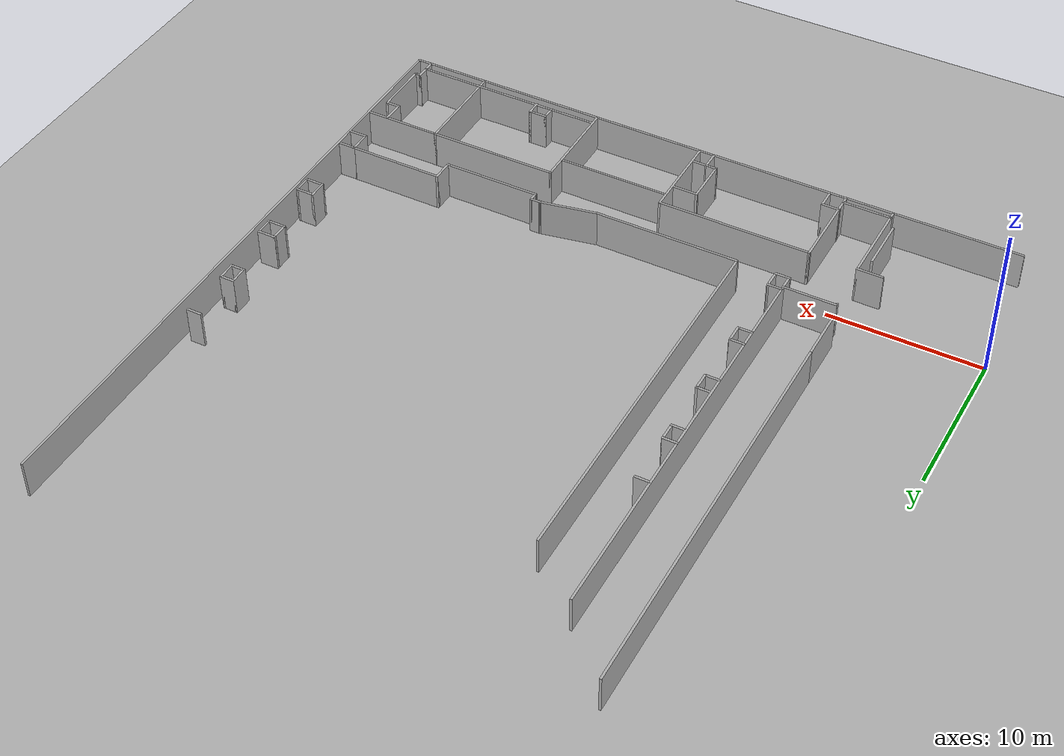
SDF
<sdf version="1.9">
 <world name="tsudanuma2-3">
  <model name="ground_plane">
   <static>true</static>
   <link name="link">
    <collision name="collision">
     <geometry><plane><normal>0 0 1</normal><size>100 100</size></plane></geometry>
     <surface>
      <contact><collide_bitmask>65535</collide_bitmask></contact>
      <friction><ode><mu>100</mu><mu2>50</mu2></ode></friction>
     </surface>
    </collision>
    <visual name="visual">
     <cast_shadows>false</cast_shadows>
     <geometry><plane><normal>0 0 1</normal><size>100 100</size></plane></geometry>
     <material>
      <ambient>0.5 0.5 0.5 1</ambient>
      <diffuse>0.7 0.7 0.7 1</diffuse>
      <specular>0.1 0.1 0.1 1</specular>
     </material>
    </visual>
   </link>
  </model>
  <model name="Tsudanuma_2-3-without_door">
   <pose>11.859500000000001 12.3796 0 0 0 0</pose>
   <link name="Wall_10">
    <collision name="Wall_10_Collision">
     <geometry><box><size>42.159100000000002 0.14999999999999999 2.5</size></box></geometry>
     <pose>0 0 1.25 0 0 0</pose>
    </collision>
    <visual name="Wall_10_Visual">
     <pose>0 0 1.25 0 0 0</pose>
     <geometry><box><size>42.159100000000002 0.14999999999999999 2.5</size></box></geometry>
     <material>
      <ambient>0.5 0.5 0.5 1</ambient>
      <diffuse>0.7 0.7 0.7 1</diffuse>
      <specular>0.1 0.1 0.1 1</specular>
     </material>
     <meta><layer>0</layer></meta>
    </visual>
    <pose>9.8734099999999998 -20.1767 0 0 0 -0.00063100000000000016</pose>
   </link>
   <link name="Wall_11">
    <collision name="Wall_11_Collision">
     <geometry><box><size>42 0.14999999999999999 2.5</size></box></geometry>
     <pose>0 0 1.25 0 0 0</pose>
    </collision>
    <visual name="Wall_11_Visual">
     <pose>0 0 1.25 0 0 0</pose>
     <geometry><box><size>42 0.14999999999999999 2.5</size></box></geometry>
     <material>
      <ambient>0.5 0.5 0.5 1</ambient>
      <diffuse>0.7 0.7 0.7 1</diffuse>
      <specular>0.1 0.1 0.1 1</specular>
     </material>
     <meta><layer>0</layer></meta>
    </visual>
    <pose>30.8779 0.73503799999999997 0 0 0 1.5708</pose>
   </link>
   <link name="Wall_200">
    <collision name="Wall_200_Collision">
     <geometry><box><size>3.5 0.14999999999999999 2.5</size></box></geometry>
     <pose>0 0 1.25 0 0 0</pose>
    </collision>
    <visual name="Wall_200_Visual">
     <pose>0 0 1.25 0 0 0</pose>
     <geometry><box><size>3.5 0.14999999999999999 2.5</size></box></geometry>
     <material>
      <ambient>0.5 0.5 0.5 1</ambient>
      <diffuse>0.7 0.7 0.7 1</diffuse>
      <specular>0.1 0.1 0.1 1</specular>
     </material>
     <meta><layer>0</layer></meta>
    </visual>
    <pose>-3.3311199999999999 -17.138500000000001 0 0 0 1.5708</pose>
   </link>
   <link name="Wall_203">
    <collision name="Wall_203_Collision">
     <geometry><box><size>1.75 0.14999999999999999 2.5</size></box></geometry>
     <pose>0 0 1.25 0 0 0</pose>
    </collision>
    <visual name="Wall_203_Visual">
     <pose>0 0 1.25 0 0 0</pose>
     <geometry><box><size>1.75 0.14999999999999999 2.5</size></box></geometry>
     <material>
      <ambient>0.5 0.5 0.5 1</ambient>
      <diffuse>0.7 0.7 0.7 1</diffuse>
      <specular>0.1 0.1 0.1 1</specular>
     </material>
     <meta><layer>0</layer></meta>
    </visual>
    <pose>-3.6311200000000001 -14.3635 0 0 0 0</pose>
   </link>
   <link name="Wall_204">
    <collision name="Wall_204_Collision">
     <geometry><box><size>5.5 0.14999999999999999 2.5</size></box></geometry>
     <pose>0 0 1.25 0 0 0</pose>
    </collision>
    <visual name="Wall_204_Visual">
     <pose>0 0 1.25 0 0 0</pose>
     <geometry><box><size>5.5 0.14999999999999999 2.5</size></box></geometry>
     <material>
      <ambient>0.5 0.5 0.5 1</ambient>
      <diffuse>0.7 0.7 0.7 1</diffuse>
      <specular>0.1 0.1 0.1 1</specular>
     </material>
     <meta><layer>0</layer></meta>
    </visual>
    <pose>-2.8311199999999999 -17.038499999999999 0 0 0 -1.5708</pose>
   </link>
   <link name="Wall_205">
    <collision name="Wall_205_Collision">
     <geometry><box><size>3.25 0.14999999999999999 2.5</size></box></geometry>
     <pose>0 0 1.25 0 0 0</pose>
    </collision>
    <visual name="Wall_205_Visual">
     <pose>0 0 1.25 0 0 0</pose>
     <geometry><box><size>3.25 0.14999999999999999 2.5</size></box></geometry>
     <material>
      <ambient>0.5 0.5 0.5 1</ambient>
      <diffuse>0.7 0.7 0.7 1</diffuse>
      <specular>0.1 0.1 0.1 1</specular>
     </material>
     <meta><layer>0</layer></meta>
    </visual>
    <pose>-1.28112 -19.7135 0 0 0 0</pose>
   </link>
   <link name="Wall_206">
    <collision name="Wall_206_Collision">
     <geometry><box><size>5.5 0.14999999999999999 2.5</size></box></geometry>
     <pose>0 0 1.25 0 0 0</pose>
    </collision>
    <visual name="Wall_206_Visual">
     <pose>0 0 1.25 0 0 0</pose>
     <geometry><box><size>5.5 0.14999999999999999 2.5</size></box></geometry>
     <material>
      <ambient>0.5 0.5 0.5 1</ambient>
      <diffuse>0.7 0.7 0.7 1</diffuse>
      <specular>0.1 0.1 0.1 1</specular>
     </material>
     <meta><layer>0</layer></meta>
    </visual>
    <pose>0.26887899999999998 -17.038499999999999 0 0 0 1.5708</pose>
   </link>
   <link name="Wall_207">
    <collision name="Wall_207_Collision">
     <geometry><box><size>10.113300000000001 0.14999999999999999 2.5</size></box></geometry>
     <pose>0 0 1.25 0 0 0</pose>
    </collision>
    <visual name="Wall_207_Visual">
     <pose>0 0 1.25 0 0 0</pose>
     <geometry><box><size>10.113300000000001 0.14999999999999999 2.5</size></box></geometry>
     <material>
      <ambient>0.5 0.5 0.5 1</ambient>
      <diffuse>0.7 0.7 0.7 1</diffuse>
      <specular>0.1 0.1 0.1 1</specular>
     </material>
     <meta><layer>0</layer></meta>
    </visual>
    <pose>5.2505100000000002 -14.3635 0 0 0 0</pose>
   </link>
   <link name="Wall_209">
    <collision name="Wall_209_Collision">
     <geometry><box><size>5.9000000000000004 0.14999999999999999 2.5</size></box></geometry>
     <pose>0 0 1.25 0 0 0</pose>
    </collision>
    <visual name="Wall_209_Visual">
     <pose>0 0 1.25 0 0 0</pose>
     <geometry><box><size>5.9000000000000004 0.14999999999999999 2.5</size></box></geometry>
     <material>
      <ambient>0.5 0.5 0.5 1</ambient>
      <diffuse>0.7 0.7 0.7 1</diffuse>
      <specular>0.1 0.1 0.1 1</specular>
     </material>
     <meta><layer>0</layer></meta>
    </visual>
    <pose>10.232100000000001 -17.238499999999998 0 0 0 -1.5708</pose>
   </link>
   <link name="Wall_211">
    <collision name="Wall_211_Collision">
     <geometry><box><size>7.25 0.14999999999999999 2.5</size></box></geometry>
     <pose>0 0 1.25 0 0 0</pose>
    </collision>
    <visual name="Wall_211_Visual">
     <pose>0 0 1.25 0 0 0</pose>
     <geometry><box><size>7.25 0.14999999999999999 2.5</size></box></geometry>
     <material>
      <ambient>0.5 0.5 0.5 1</ambient>
      <diffuse>0.7 0.7 0.7 1</diffuse>
      <specular>0.1 0.1 0.1 1</specular>
     </material>
     <meta><layer>0</layer></meta>
    </visual>
    <pose>13.852 -15.243499999999999 0 0 0 0</pose>
   </link>
   <link name="Wall_213">
    <collision name="Wall_213_Collision">
     <geometry><box><size>6.5 0.14999999999999999 2.5</size></box></geometry>
     <pose>0 0 1.25 0 0 0</pose>
    </collision>
    <visual name="Wall_213_Visual">
     <pose>0 0 1.25 0 0 0</pose>
     <geometry><box><size>6.5 0.14999999999999999 2.5</size></box></geometry>
     <material>
      <ambient>0.5 0.5 0.5 1</ambient>
      <diffuse>0.7 0.7 0.7 1</diffuse>
      <specular>0.1 0.1 0.1 1</specular>
     </material>
     <meta><layer>0</layer></meta>
    </visual>
    <pose>17.539300000000001 -16.946400000000001 0 0 0 1.5708</pose>
   </link>
   <link name="Wall_215">
    <collision name="Wall_215_Collision">
     <geometry><box><size>8.5 0.14999999999999999 2.5</size></box></geometry>
     <pose>0 0 1.25 0 0 0</pose>
    </collision>
    <visual name="Wall_215_Visual">
     <pose>0 0 1.25 0 0 0</pose>
     <geometry><box><size>8.5 0.14999999999999999 2.5</size></box></geometry>
     <material>
      <ambient>0.5 0.5 0.5 1</ambient>
      <diffuse>0.7 0.7 0.7 1</diffuse>
      <specular>0.1 0.1 0.1 1</specular>
     </material>
     <meta><layer>0</layer></meta>
    </visual>
    <pose>21.714300000000001 -13.7714 0 0 0 0</pose>
   </link>
   <link name="Wall_216">
    <collision name="Wall_216_Collision">
     <geometry><box><size>6.5 0.14999999999999999 2.5</size></box></geometry>
     <pose>0 0 1.25 0 0 0</pose>
    </collision>
    <visual name="Wall_216_Visual">
     <pose>0 0 1.25 0 0 0</pose>
     <geometry><box><size>6.5 0.14999999999999999 2.5</size></box></geometry>
     <material>
      <ambient>0.5 0.5 0.5 1</ambient>
      <diffuse>0.7 0.7 0.7 1</diffuse>
      <specular>0.1 0.1 0.1 1</specular>
     </material>
     <meta><layer>0</layer></meta>
    </visual>
    <pose>25.889299999999999 -16.946400000000001 0 0 0 -1.5708</pose>
   </link>
   <link name="Wall_218">
    <collision name="Wall_218_Collision">
     <geometry><box><size>5 0.14999999999999999 2.5</size></box></geometry>
     <pose>0 0 1.25 0 0 0</pose>
    </collision>
    <visual name="Wall_218_Visual">
     <pose>0 0 1.25 0 0 0</pose>
     <geometry><box><size>5 0.14999999999999999 2.5</size></box></geometry>
     <material>
      <ambient>0.5 0.5 0.5 1</ambient>
      <diffuse>0.7 0.7 0.7 1</diffuse>
      <specular>0.1 0.1 0.1 1</specular>
     </material>
     <meta><layer>0</layer></meta>
    </visual>
    <pose>28.314299999999999 -13.7714 0 0 0 0</pose>
   </link>
   <link name="Wall_220">
    <collision name="Wall_220_Collision">
     <geometry><box><size>1.4899800000000001 0.14999999999999999 2.5</size></box></geometry>
     <pose>0 0 1.25 0 0 0</pose>
    </collision>
    <visual name="Wall_220_Visual">
     <pose>0 0 1.25 0 0 0</pose>
     <geometry><box><size>1.4899800000000001 0.14999999999999999 2.5</size></box></geometry>
     <material>
      <ambient>0.5 0.5 0.5 1</ambient>
      <diffuse>0.7 0.7 0.7 1</diffuse>
      <specular>0.1 0.1 0.1 1</specular>
     </material>
     <meta><layer>0</layer></meta>
    </visual>
    <pose>23.611699999999999 -10.7807 0 0 0 1.5708</pose>
   </link>
   <link name="Wall_221">
    <collision name="Wall_221_Collision">
     <geometry><box><size>6.25 0.14999999999999999 2.5</size></box></geometry>
     <pose>0 0 1.25 0 0 0</pose>
    </collision>
    <visual name="Wall_221_Visual">
     <pose>0 0 1.25 0 0 0</pose>
     <geometry><box><size>6.25 0.14999999999999999 2.5</size></box></geometry>
     <material>
      <ambient>0.5 0.5 0.5 1</ambient>
      <diffuse>0.7 0.7 0.7 1</diffuse>
      <specular>0.1 0.1 0.1 1</specular>
     </material>
     <meta><layer>0</layer></meta>
    </visual>
    <pose>26.6617 -10.110799999999999 0 0 0 0</pose>
   </link>
   <link name="Wall_222">
    <collision name="Wall_222_Collision">
     <geometry><box><size>1.5 0.14999999999999999 2.5</size></box></geometry>
     <pose>0 0 1.25 0 0 0</pose>
    </collision>
    <visual name="Wall_222_Visual">
     <pose>0 0 1.25 0 0 0</pose>
     <geometry><box><size>1.5 0.14999999999999999 2.5</size></box></geometry>
     <material>
      <ambient>0.5 0.5 0.5 1</ambient>
      <diffuse>0.7 0.7 0.7 1</diffuse>
      <specular>0.1 0.1 0.1 1</specular>
     </material>
     <meta><layer>0</layer></meta>
    </visual>
    <pose>29.7117 -10.7858 0 0 0 -1.5708</pose>
   </link>
   <link name="Wall_223">
    <collision name="Wall_223_Collision">
     <geometry><box><size>1.25 0.14999999999999999 2.5</size></box></geometry>
     <pose>0 0 1.25 0 0 0</pose>
    </collision>
    <visual name="Wall_223_Visual">
     <pose>0 0 1.25 0 0 0</pose>
     <geometry><box><size>1.25 0.14999999999999999 2.5</size></box></geometry>
     <material>
      <ambient>0.5 0.5 0.5 1</ambient>
      <diffuse>0.7 0.7 0.7 1</diffuse>
      <specular>0.1 0.1 0.1 1</specular>
     </material>
     <meta><layer>0</layer></meta>
    </visual>
    <pose>30.261700000000001 -11.460800000000001 0 0 0 0</pose>
   </link>
   <link name="Wall_225">
    <collision name="Wall_225_Collision">
     <geometry><box><size>6.4000000000000004 0.14999999999999999 2.5</size></box></geometry>
     <pose>0 0 1.25 0 0 0</pose>
    </collision>
    <visual name="Wall_225_Visual">
     <pose>0 0 1.25 0 0 0</pose>
     <geometry><box><size>6.4000000000000004 0.14999999999999999 2.5</size></box></geometry>
     <material>
      <ambient>0.5 0.5 0.5 1</ambient>
      <diffuse>0.7 0.7 0.7 1</diffuse>
      <specular>0.1 0.1 0.1 1</specular>
     </material>
     <meta><layer>0</layer></meta>
    </visual>
    <pose>20.486699999999999 -11.450699999999999 0 0 0 3.1415899999999999</pose>
   </link>
   <link name="Wall_227">
    <collision name="Wall_227_Collision">
     <geometry><box><size>0.75 0.14999999999999999 2.5</size></box></geometry>
     <pose>0 0 1.25 0 0 0</pose>
    </collision>
    <visual name="Wall_227_Visual">
     <pose>0 0 1.25 0 0 0</pose>
     <geometry><box><size>0.75 0.14999999999999999 2.5</size></box></geometry>
     <material>
      <ambient>0.5 0.5 0.5 1</ambient>
      <diffuse>0.7 0.7 0.7 1</diffuse>
      <specular>0.1 0.1 0.1 1</specular>
     </material>
     <meta><layer>0</layer></meta>
    </visual>
    <pose>17.0623 -10.929600000000001 0 0 0 0</pose>
   </link>
   <link name="Wall_229">
    <collision name="Wall_229_Collision">
     <geometry><box><size>0.67110999999999998 0.14999999999999999 2.5</size></box></geometry>
     <pose>0 0 1.25 0 0 0</pose>
    </collision>
    <visual name="Wall_229_Visual">
     <pose>0 0 1.25 0 0 0</pose>
     <geometry><box><size>0.67110999999999998 0.14999999999999999 2.5</size></box></geometry>
     <material>
      <ambient>0.5 0.5 0.5 1</ambient>
      <diffuse>0.7 0.7 0.7 1</diffuse>
      <specular>0.1 0.1 0.1 1</specular>
     </material>
     <meta><layer>0</layer></meta>
    </visual>
    <pose>17.361999999999998 -11.190200000000001 0 0 0 1.5696099999999999</pose>
   </link>
   <link name="Wall_231">
    <collision name="Wall_231_Collision">
     <geometry><box><size>3.8473999999999999 0.14999999999999999 2.5</size></box></geometry>
     <pose>0 0 1.25 0 0 0</pose>
    </collision>
    <visual name="Wall_231_Visual">
     <pose>0 0 1.25 0 0 0</pose>
     <geometry><box><size>3.8473999999999999 0.14999999999999999 2.5</size></box></geometry>
     <material>
      <ambient>0.5 0.5 0.5 1</ambient>
      <diffuse>0.7 0.7 0.7 1</diffuse>
      <specular>0.1 0.1 0.1 1</specular>
     </material>
     <meta><layer>0</layer></meta>
    </visual>
    <pose>14.9482 -11.285399999999999 0 0 0 0.19367400000000001</pose>
   </link>
   <link name="Wall_234">
    <collision name="Wall_234_Collision">
     <geometry><box><size>9.5 0.14999999999999999 2.5</size></box></geometry>
     <pose>0 0 1.25 0 0 0</pose>
    </collision>
    <visual name="Wall_234_Visual">
     <pose>0 0 1.25 0 0 0</pose>
     <geometry><box><size>9.5 0.14999999999999999 2.5</size></box></geometry>
     <material>
      <ambient>0.5 0.5 0.5 1</ambient>
      <diffuse>0.7 0.7 0.7 1</diffuse>
      <specular>0.1 0.1 0.1 1</specular>
     </material>
     <meta><layer>0</layer></meta>
    </visual>
    <pose>8.4590499999999995 -11.6412 0 0 0 3.1415899999999999</pose>
   </link>
   <link name="Wall_235">
    <collision name="Wall_235_Collision">
     <geometry><box><size>25.100000000000001 0.14999999999999999 2.5</size></box></geometry>
     <pose>0 0 1.25 0 0 0</pose>
    </collision>
    <visual name="Wall_235_Visual">
     <pose>0 0 1.25 0 0 0</pose>
     <geometry><box><size>25.100000000000001 0.14999999999999999 2.5</size></box></geometry>
     <material>
      <ambient>0.5 0.5 0.5 1</ambient>
      <diffuse>0.7 0.7 0.7 1</diffuse>
      <specular>0.1 0.1 0.1 1</specular>
     </material>
     <meta><layer>0</layer></meta>
    </visual>
    <pose>3.7840500000000001 0.83375900000000003 0 0 0 1.5708</pose>
   </link>
   <link name="Wall_339">
    <collision name="Wall_339_Collision">
     <geometry><box><size>27.75 0.14999999999999999 2.5</size></box></geometry>
     <pose>0 0 1.25 0 0 0</pose>
    </collision>
    <visual name="Wall_339_Visual">
     <pose>0 0 1.25 0 0 0</pose>
     <geometry><box><size>27.75 0.14999999999999999 2.5</size></box></geometry>
     <material>
      <ambient>0.5 0.5 0.5 1</ambient>
      <diffuse>0.7 0.7 0.7 1</diffuse>
      <specular>0.1 0.1 0.1 1</specular>
     </material>
     <meta><layer>0</layer></meta>
    </visual>
    <pose>0.41970400000000002 2.17218 0 0 0 -1.5708</pose>
   </link>
   <link name="Wall_347">
    <collision name="Wall_347_Collision">
     <geometry><box><size>1 0.14999999999999999 2.5</size></box></geometry>
     <pose>0 0 1.25 0 0 0</pose>
    </collision>
    <visual name="Wall_347_Visual">
     <pose>0 0 1.25 0 0 0</pose>
     <geometry><box><size>1 0.14999999999999999 2.5</size></box></geometry>
     <material>
      <ambient>0.5 0.5 0.5 1</ambient>
      <diffuse>0.7 0.7 0.7 1</diffuse>
      <specular>0.1 0.1 0.1 1</specular>
     </material>
     <meta><layer>0</layer></meta>
    </visual>
    <pose>0.91505499999999995 6.9121300000000003 0 0 0 3.1415899999999999</pose>
   </link>
   <link name="Wall_349">
    <collision name="Wall_349_Collision">
     <geometry><box><size>1 0.14999999999999999 2.5</size></box></geometry>
     <pose>0 0 1.25 0 0 0</pose>
    </collision>
    <visual name="Wall_349_Visual">
     <pose>0 0 1.25 0 0 0</pose>
     <geometry><box><size>1 0.14999999999999999 2.5</size></box></geometry>
     <material>
      <ambient>0.5 0.5 0.5 1</ambient>
      <diffuse>0.7 0.7 0.7 1</diffuse>
      <specular>0.1 0.1 0.1 1</specular>
     </material>
     <meta><layer>0</layer></meta>
    </visual>
    <pose>0.85491799999999996 3.6221199999999998 0 0 0 0</pose>
   </link>
   <link name="Wall_350">
    <collision name="Wall_350_Collision">
     <geometry><box><size>1.25 0.14999999999999999 2.5</size></box></geometry>
     <pose>0 0 1.25 0 0 0</pose>
    </collision>
    <visual name="Wall_350_Visual">
     <pose>0 0 1.25 0 0 0</pose>
     <geometry><box><size>1.25 0.14999999999999999 2.5</size></box></geometry>
     <material>
      <ambient>0.5 0.5 0.5 1</ambient>
      <diffuse>0.7 0.7 0.7 1</diffuse>
      <specular>0.1 0.1 0.1 1</specular>
     </material>
     <meta><layer>0</layer></meta>
    </visual>
    <pose>1.2799199999999999 3.07212 0 0 0 -1.5708</pose>
   </link>
   <link name="Wall_351">
    <collision name="Wall_351_Collision">
     <geometry><box><size>1 0.14999999999999999 2.5</size></box></geometry>
     <pose>0 0 1.25 0 0 0</pose>
    </collision>
    <visual name="Wall_351_Visual">
     <pose>0 0 1.25 0 0 0</pose>
     <geometry><box><size>1 0.14999999999999999 2.5</size></box></geometry>
     <material>
      <ambient>0.5 0.5 0.5 1</ambient>
      <diffuse>0.7 0.7 0.7 1</diffuse>
      <specular>0.1 0.1 0.1 1</specular>
     </material>
     <meta><layer>0</layer></meta>
    </visual>
    <pose>0.85491799999999996 2.5221200000000001 0 0 0 3.1415899999999999</pose>
   </link>
   <link name="Wall_353">
    <collision name="Wall_353_Collision">
     <geometry><box><size>1 0.14999999999999999 2.5</size></box></geometry>
     <pose>0 0 1.25 0 0 0</pose>
    </collision>
    <visual name="Wall_353_Visual">
     <pose>0 0 1.25 0 0 0</pose>
     <geometry><box><size>1 0.14999999999999999 2.5</size></box></geometry>
     <material>
      <ambient>0.5 0.5 0.5 1</ambient>
      <diffuse>0.7 0.7 0.7 1</diffuse>
      <specular>0.1 0.1 0.1 1</specular>
     </material>
     <meta><layer>0</layer></meta>
    </visual>
    <pose>0.90002099999999996 -0.79795000000000005 0 0 0 0</pose>
   </link>
   <link name="Wall_354">
    <collision name="Wall_354_Collision">
     <geometry><box><size>1.25 0.14999999999999999 2.5</size></box></geometry>
     <pose>0 0 1.25 0 0 0</pose>
    </collision>
    <visual name="Wall_354_Visual">
     <pose>0 0 1.25 0 0 0</pose>
     <geometry><box><size>1.25 0.14999999999999999 2.5</size></box></geometry>
     <material>
      <ambient>0.5 0.5 0.5 1</ambient>
      <diffuse>0.7 0.7 0.7 1</diffuse>
      <specular>0.1 0.1 0.1 1</specular>
     </material>
     <meta><layer>0</layer></meta>
    </visual>
    <pose>1.3250200000000001 -1.34795 0 0 0 -1.5708</pose>
   </link>
   <link name="Wall_355">
    <collision name="Wall_355_Collision">
     <geometry><box><size>1 0.14999999999999999 2.5</size></box></geometry>
     <pose>0 0 1.25 0 0 0</pose>
    </collision>
    <visual name="Wall_355_Visual">
     <pose>0 0 1.25 0 0 0</pose>
     <geometry><box><size>1 0.14999999999999999 2.5</size></box></geometry>
     <material>
      <ambient>0.5 0.5 0.5 1</ambient>
      <diffuse>0.7 0.7 0.7 1</diffuse>
      <specular>0.1 0.1 0.1 1</specular>
     </material>
     <meta><layer>0</layer></meta>
    </visual>
    <pose>0.90002099999999996 -1.89795 0 0 0 3.1415899999999999</pose>
   </link>
   <link name="Wall_357">
    <collision name="Wall_357_Collision">
     <geometry><box><size>1 0.14999999999999999 2.5</size></box></geometry>
     <pose>0 0 1.25 0 0 0</pose>
    </collision>
    <visual name="Wall_357_Visual">
     <pose>0 0 1.25 0 0 0</pose>
     <geometry><box><size>1 0.14999999999999999 2.5</size></box></geometry>
     <material>
      <ambient>0.5 0.5 0.5 1</ambient>
      <diffuse>0.7 0.7 0.7 1</diffuse>
      <specular>0.1 0.1 0.1 1</specular>
     </material>
     <meta><layer>0</layer></meta>
    </visual>
    <pose>0.88498699999999997 -5.2480900000000004 0 0 0 0</pose>
   </link>
   <link name="Wall_358">
    <collision name="Wall_358_Collision">
     <geometry><box><size>1.25 0.14999999999999999 2.5</size></box></geometry>
     <pose>0 0 1.25 0 0 0</pose>
    </collision>
    <visual name="Wall_358_Visual">
     <pose>0 0 1.25 0 0 0</pose>
     <geometry><box><size>1.25 0.14999999999999999 2.5</size></box></geometry>
     <material>
      <ambient>0.5 0.5 0.5 1</ambient>
      <diffuse>0.7 0.7 0.7 1</diffuse>
      <specular>0.1 0.1 0.1 1</specular>
     </material>
     <meta><layer>0</layer></meta>
    </visual>
    <pose>1.30999 -5.7980900000000002 0 0 0 -1.5708</pose>
   </link>
   <link name="Wall_359">
    <collision name="Wall_359_Collision">
     <geometry><box><size>1 0.14999999999999999 2.5</size></box></geometry>
     <pose>0 0 1.25 0 0 0</pose>
    </collision>
    <visual name="Wall_359_Visual">
     <pose>0 0 1.25 0 0 0</pose>
     <geometry><box><size>1 0.14999999999999999 2.5</size></box></geometry>
     <material>
      <ambient>0.5 0.5 0.5 1</ambient>
      <diffuse>0.7 0.7 0.7 1</diffuse>
      <specular>0.1 0.1 0.1 1</specular>
     </material>
     <meta><layer>0</layer></meta>
    </visual>
    <pose>0.88498699999999997 -6.34809 0 0 0 3.1415899999999999</pose>
   </link>
   <link name="Wall_361">
    <collision name="Wall_361_Collision">
     <geometry><box><size>1 0.14999999999999999 2.5</size></box></geometry>
     <pose>0 0 1.25 0 0 0</pose>
    </collision>
    <visual name="Wall_361_Visual">
     <pose>0 0 1.25 0 0 0</pose>
     <geometry><box><size>1 0.14999999999999999 2.5</size></box></geometry>
     <material>
      <ambient>0.5 0.5 0.5 1</ambient>
      <diffuse>0.7 0.7 0.7 1</diffuse>
      <specular>0.1 0.1 0.1 1</specular>
     </material>
     <meta><layer>0</layer></meta>
    </visual>
    <pose>0.86995199999999995 -10.5853 0 0 0 0</pose>
   </link>
   <link name="Wall_362">
    <collision name="Wall_362_Collision">
     <geometry><box><size>1.2557199999999999 0.14999999999999999 2.5</size></box></geometry>
     <pose>0 0 1.25 0 0 0</pose>
    </collision>
    <visual name="Wall_362_Visual">
     <pose>0 0 1.25 0 0 0</pose>
     <geometry><box><size>1.2557199999999999 0.14999999999999999 2.5</size></box></geometry>
     <material>
      <ambient>0.5 0.5 0.5 1</ambient>
      <diffuse>0.7 0.7 0.7 1</diffuse>
      <specular>0.1 0.1 0.1 1</specular>
     </material>
     <meta><layer>0</layer></meta>
    </visual>
    <pose>1.2935300000000001 -11.1381 0 0 0 -1.5733699999999999</pose>
   </link>
   <link name="Wall_365">
    <collision name="Wall_365_Collision">
     <geometry><box><size>1.03 0.14999999999999999 2.5</size></box></geometry>
     <pose>0 0 1.25 0 0 0</pose>
    </collision>
    <visual name="Wall_365_Visual">
     <pose>0 0 1.25 0 0 0</pose>
     <geometry><box><size>1.03 0.14999999999999999 2.5</size></box></geometry>
     <material>
      <ambient>0.5 0.5 0.5 1</ambient>
      <diffuse>0.7 0.7 0.7 1</diffuse>
      <specular>0.1 0.1 0.1 1</specular>
     </material>
     <meta><layer>0</layer></meta>
    </visual>
    <pose>0.85211000000000003 -11.690899999999999 0 0 0 3.1415899999999999</pose>
   </link>
   <link name="Wall_371">
    <collision name="Wall_371_Collision">
     <geometry><box><size>1 0.14999999999999999 2.5</size></box></geometry>
     <pose>0 0 1.25 0 0 0</pose>
    </collision>
    <visual name="Wall_371_Visual">
     <pose>0 0 1.25 0 0 0</pose>
     <geometry><box><size>1 0.14999999999999999 2.5</size></box></geometry>
     <material>
      <ambient>0.5 0.5 0.5 1</ambient>
      <diffuse>0.7 0.7 0.7 1</diffuse>
      <specular>0.1 0.1 0.1 1</specular>
     </material>
     <meta><layer>0</layer></meta>
    </visual>
    <pose>29.750800000000002 7.3255499999999998 0 0 0 0</pose>
   </link>
   <link name="Wall_374">
    <collision name="Wall_374_Collision">
     <geometry><box><size>1 0.14999999999999999 2.5</size></box></geometry>
     <pose>0 0 1.25 0 0 0</pose>
    </collision>
    <visual name="Wall_374_Visual">
     <pose>0 0 1.25 0 0 0</pose>
     <geometry><box><size>1 0.14999999999999999 2.5</size></box></geometry>
     <material>
      <ambient>0.5 0.5 0.5 1</ambient>
      <diffuse>0.7 0.7 0.7 1</diffuse>
      <specular>0.1 0.1 0.1 1</specular>
     </material>
     <meta><layer>0</layer></meta>
    </visual>
    <pose>29.706099999999999 4.0314500000000004 0 0 0 0</pose>
   </link>
   <link name="Wall_375">
    <collision name="Wall_375_Collision">
     <geometry><box><size>1.25 0.14999999999999999 2.5</size></box></geometry>
     <pose>0 0 1.25 0 0 0</pose>
    </collision>
    <visual name="Wall_375_Visual">
     <pose>0 0 1.25 0 0 0</pose>
     <geometry><box><size>1.25 0.14999999999999999 2.5</size></box></geometry>
     <material>
      <ambient>0.5 0.5 0.5 1</ambient>
      <diffuse>0.7 0.7 0.7 1</diffuse>
      <specular>0.1 0.1 0.1 1</specular>
     </material>
     <meta><layer>0</layer></meta>
    </visual>
    <pose>30.1311 3.4814500000000002 0 0 0 -1.5708</pose>
   </link>
   <link name="Wall_376">
    <collision name="Wall_376_Collision">
     <geometry><box><size>1 0.14999999999999999 2.5</size></box></geometry>
     <pose>0 0 1.25 0 0 0</pose>
    </collision>
    <visual name="Wall_376_Visual">
     <pose>0 0 1.25 0 0 0</pose>
     <geometry><box><size>1 0.14999999999999999 2.5</size></box></geometry>
     <material>
      <ambient>0.5 0.5 0.5 1</ambient>
      <diffuse>0.7 0.7 0.7 1</diffuse>
      <specular>0.1 0.1 0.1 1</specular>
     </material>
     <meta><layer>0</layer></meta>
    </visual>
    <pose>29.706099999999999 2.9314499999999999 0 0 0 3.1415899999999999</pose>
   </link>
   <link name="Wall_377">
    <collision name="Wall_377_Collision">
     <geometry><box><size>1.25 0.14999999999999999 2.5</size></box></geometry>
     <pose>0 0 1.25 0 0 0</pose>
    </collision>
    <visual name="Wall_377_Visual">
     <pose>0 0 1.25 0 0 0</pose>
     <geometry><box><size>1.25 0.14999999999999999 2.5</size></box></geometry>
     <material>
      <ambient>0.5 0.5 0.5 1</ambient>
      <diffuse>0.7 0.7 0.7 1</diffuse>
      <specular>0.1 0.1 0.1 1</specular>
     </material>
     <meta><layer>0</layer></meta>
    </visual>
    <pose>29.281099999999999 3.4814500000000002 0 0 0 1.5708</pose>
   </link>
   <link name="Wall_379">
    <collision name="Wall_379_Collision">
     <geometry><box><size>1.25 0.14999999999999999 2.5</size></box></geometry>
     <pose>0 0 1.25 0 0 0</pose>
    </collision>
    <visual name="Wall_379_Visual">
     <pose>0 0 1.25 0 0 0</pose>
     <geometry><box><size>1.25 0.14999999999999999 2.5</size></box></geometry>
     <material>
      <ambient>0.5 0.5 0.5 1</ambient>
      <diffuse>0.7 0.7 0.7 1</diffuse>
      <specular>0.1 0.1 0.1 1</specular>
     </material>
     <meta><layer>0</layer></meta>
    </visual>
    <pose>29.890699999999999 -0.44218099999999999 0 0 0 0</pose>
   </link>
   <link name="Wall_380">
    <collision name="Wall_380_Collision">
     <geometry><box><size>1.25 0.14999999999999999 2.5</size></box></geometry>
     <pose>0 0 1.25 0 0 0</pose>
    </collision>
    <visual name="Wall_380_Visual">
     <pose>0 0 1.25 0 0 0</pose>
     <geometry><box><size>1.25 0.14999999999999999 2.5</size></box></geometry>
     <material>
      <ambient>0.5 0.5 0.5 1</ambient>
      <diffuse>0.7 0.7 0.7 1</diffuse>
      <specular>0.1 0.1 0.1 1</specular>
     </material>
     <meta><layer>0</layer></meta>
    </visual>
    <pose>30.4407 -0.99218099999999998 0 0 0 -1.5708</pose>
   </link>
   <link name="Wall_381">
    <collision name="Wall_381_Collision">
     <geometry><box><size>1.25 0.14999999999999999 2.5</size></box></geometry>
     <pose>0 0 1.25 0 0 0</pose>
    </collision>
    <visual name="Wall_381_Visual">
     <pose>0 0 1.25 0 0 0</pose>
     <geometry><box><size>1.25 0.14999999999999999 2.5</size></box></geometry>
     <material>
      <ambient>0.5 0.5 0.5 1</ambient>
      <diffuse>0.7 0.7 0.7 1</diffuse>
      <specular>0.1 0.1 0.1 1</specular>
     </material>
     <meta><layer>0</layer></meta>
    </visual>
    <pose>29.890699999999999 -1.5421800000000001 0 0 0 3.1415899999999999</pose>
   </link>
   <link name="Wall_382">
    <collision name="Wall_382_Collision">
     <geometry><box><size>1.25 0.14999999999999999 2.5</size></box></geometry>
     <pose>0 0 1.25 0 0 0</pose>
    </collision>
    <visual name="Wall_382_Visual">
     <pose>0 0 1.25 0 0 0</pose>
     <geometry><box><size>1.25 0.14999999999999999 2.5</size></box></geometry>
     <material>
      <ambient>0.5 0.5 0.5 1</ambient>
      <diffuse>0.7 0.7 0.7 1</diffuse>
      <specular>0.1 0.1 0.1 1</specular>
     </material>
     <meta><layer>0</layer></meta>
    </visual>
    <pose>29.340699999999998 -0.99218099999999998 0 0 0 1.5708</pose>
   </link>
   <link name="Wall_384">
    <collision name="Wall_384_Collision">
     <geometry><box><size>1.25 0.14999999999999999 2.5</size></box></geometry>
     <pose>0 0 1.25 0 0 0</pose>
    </collision>
    <visual name="Wall_384_Visual">
     <pose>0 0 1.25 0 0 0</pose>
     <geometry><box><size>1.25 0.14999999999999999 2.5</size></box></geometry>
     <material>
      <ambient>0.5 0.5 0.5 1</ambient>
      <diffuse>0.7 0.7 0.7 1</diffuse>
      <specular>0.1 0.1 0.1 1</specular>
     </material>
     <meta><layer>0</layer></meta>
    </visual>
    <pose>30.049800000000001 -4.9356999999999998 0 0 0 0</pose>
   </link>
   <link name="Wall_385">
    <collision name="Wall_385_Collision">
     <geometry><box><size>1.25 0.14999999999999999 2.5</size></box></geometry>
     <pose>0 0 1.25 0 0 0</pose>
    </collision>
    <visual name="Wall_385_Visual">
     <pose>0 0 1.25 0 0 0</pose>
     <geometry><box><size>1.25 0.14999999999999999 2.5</size></box></geometry>
     <material>
      <ambient>0.5 0.5 0.5 1</ambient>
      <diffuse>0.7 0.7 0.7 1</diffuse>
      <specular>0.1 0.1 0.1 1</specular>
     </material>
     <meta><layer>0</layer></meta>
    </visual>
    <pose>30.599799999999998 -5.4856999999999996 0 0 0 -1.5708</pose>
   </link>
   <link name="Wall_386">
    <collision name="Wall_386_Collision">
     <geometry><box><size>1.25 0.14999999999999999 2.5</size></box></geometry>
     <pose>0 0 1.25 0 0 0</pose>
    </collision>
    <visual name="Wall_386_Visual">
     <pose>0 0 1.25 0 0 0</pose>
     <geometry><box><size>1.25 0.14999999999999999 2.5</size></box></geometry>
     <material>
      <ambient>0.5 0.5 0.5 1</ambient>
      <diffuse>0.7 0.7 0.7 1</diffuse>
      <specular>0.1 0.1 0.1 1</specular>
     </material>
     <meta><layer>0</layer></meta>
    </visual>
    <pose>30.049800000000001 -6.0357000000000003 0 0 0 3.1415899999999999</pose>
   </link>
   <link name="Wall_387">
    <collision name="Wall_387_Collision">
     <geometry><box><size>1.25 0.14999999999999999 2.5</size></box></geometry>
     <pose>0 0 1.25 0 0 0</pose>
    </collision>
    <visual name="Wall_387_Visual">
     <pose>0 0 1.25 0 0 0</pose>
     <geometry><box><size>1.25 0.14999999999999999 2.5</size></box></geometry>
     <material>
      <ambient>0.5 0.5 0.5 1</ambient>
      <diffuse>0.7 0.7 0.7 1</diffuse>
      <specular>0.1 0.1 0.1 1</specular>
     </material>
     <meta><layer>0</layer></meta>
    </visual>
    <pose>29.4998 -5.4856999999999996 0 0 0 1.5708</pose>
   </link>
   <link name="Wall_389">
    <collision name="Wall_389_Collision">
     <geometry><box><size>1.25 0.14999999999999999 2.5</size></box></geometry>
     <pose>0 0 1.25 0 0 0</pose>
    </collision>
    <visual name="Wall_389_Visual">
     <pose>0 0 1.25 0 0 0</pose>
     <geometry><box><size>1.25 0.14999999999999999 2.5</size></box></geometry>
     <material>
      <ambient>0.5 0.5 0.5 1</ambient>
      <diffuse>0.7 0.7 0.7 1</diffuse>
      <specular>0.1 0.1 0.1 1</specular>
     </material>
     <meta><layer>0</layer></meta>
    </visual>
    <pose>30.261700000000001 -10.110799999999999 0 0 0 0</pose>
   </link>
   <link name="Wall_392">
    <collision name="Wall_392_Collision">
     <geometry><box><size>3.5 0.14999999999999999 2.5</size></box></geometry>
     <pose>0 0 1.25 0 0 0</pose>
    </collision>
    <visual name="Wall_392_Visual">
     <pose>0 0 1.25 0 0 0</pose>
     <geometry><box><size>3.5 0.14999999999999999 2.5</size></box></geometry>
     <material>
      <ambient>0.5 0.5 0.5 1</ambient>
      <diffuse>0.7 0.7 0.7 1</diffuse>
      <specular>0.1 0.1 0.1 1</specular>
     </material>
     <meta><layer>0</layer></meta>
    </visual>
    <pose>-1.26061 -10.8154 0 0 0 0</pose>
   </link>
   <link name="Wall_394">
    <collision name="Wall_394_Collision">
     <geometry><box><size>0.25 0.14999999999999999 2.5</size></box></geometry>
     <pose>0 0 1.25 0 0 0</pose>
    </collision>
    <visual name="Wall_394_Visual">
     <pose>0 0 1.25 0 0 0</pose>
     <geometry><box><size>0.25 0.14999999999999999 2.5</size></box></geometry>
     <material>
      <ambient>0.5 0.5 0.5 1</ambient>
      <diffuse>0.7 0.7 0.7 1</diffuse>
      <specular>0.1 0.1 0.1 1</specular>
     </material>
     <meta><layer>0</layer></meta>
    </visual>
    <pose>-2.9356100000000001 -10.865399999999999 0 0 0 -1.5708</pose>
   </link>
   <link name="Wall_399">
    <collision name="Wall_399_Collision">
     <geometry><box><size>3.59396 0.14999999999999999 2.5</size></box></geometry>
     <pose>0 0 1.25 0 0 0</pose>
    </collision>
    <visual name="Wall_399_Visual">
     <pose>0 0 1.25 0 0 0</pose>
     <geometry><box><size>3.59396 0.14999999999999999 2.5</size></box></geometry>
     <material>
      <ambient>0.5 0.5 0.5 1</ambient>
      <diffuse>0.7 0.7 0.7 1</diffuse>
      <specular>0.1 0.1 0.1 1</specular>
     </material>
     <meta><layer>0</layer></meta>
    </visual>
    <pose>-3.18655 -8.0933700000000002 0 0 0 1.5713499999999998</pose>
   </link>
   <link name="Wall_401">
    <collision name="Wall_401_Collision">
     <geometry><box><size>1.5 0.14999999999999999 2.5</size></box></geometry>
     <pose>0 0 1.25 0 0 0</pose>
    </collision>
    <visual name="Wall_401_Visual">
     <pose>0 0 1.25 0 0 0</pose>
     <geometry><box><size>1.5 0.14999999999999999 2.5</size></box></geometry>
     <material>
      <ambient>0.5 0.5 0.5 1</ambient>
      <diffuse>0.7 0.7 0.7 1</diffuse>
      <specular>0.1 0.1 0.1 1</specular>
     </material>
     <meta><layer>0</layer></meta>
    </visual>
    <pose>29.479800000000001 -14.4917 0 0 0 -1.5708</pose>
   </link>
   <link name="Wall_402">
    <collision name="Wall_402_Collision">
     <geometry><box><size>1 0.14999999999999999 2.5</size></box></geometry>
     <pose>0 0 1.25 0 0 0</pose>
    </collision>
    <visual name="Wall_402_Visual">
     <pose>0 0 1.25 0 0 0</pose>
     <geometry><box><size>1 0.14999999999999999 2.5</size></box></geometry>
     <material>
      <ambient>0.5 0.5 0.5 1</ambient>
      <diffuse>0.7 0.7 0.7 1</diffuse>
      <specular>0.1 0.1 0.1 1</specular>
     </material>
     <meta><layer>0</layer></meta>
    </visual>
    <pose>29.904800000000002 -15.166700000000001 0 0 0 0</pose>
   </link>
   <link name="Wall_403">
    <collision name="Wall_403_Collision">
     <geometry><box><size>3.75 0.14999999999999999 2.5</size></box></geometry>
     <pose>0 0 1.25 0 0 0</pose>
    </collision>
    <visual name="Wall_403_Visual">
     <pose>0 0 1.25 0 0 0</pose>
     <geometry><box><size>3.75 0.14999999999999999 2.5</size></box></geometry>
     <material>
      <ambient>0.5 0.5 0.5 1</ambient>
      <diffuse>0.7 0.7 0.7 1</diffuse>
      <specular>0.1 0.1 0.1 1</specular>
     </material>
     <meta><layer>0</layer></meta>
    </visual>
    <pose>30.329799999999999 -16.966699999999999 0 0 0 -1.5708</pose>
   </link>
   <link name="Wall_404">
    <collision name="Wall_404_Collision">
     <geometry><box><size>0.5 0.14999999999999999 2.5</size></box></geometry>
     <pose>0 0 1.25 0 0 0</pose>
    </collision>
    <visual name="Wall_404_Visual">
     <pose>0 0 1.25 0 0 0</pose>
     <geometry><box><size>0.5 0.14999999999999999 2.5</size></box></geometry>
     <material>
      <ambient>0.5 0.5 0.5 1</ambient>
      <diffuse>0.7 0.7 0.7 1</diffuse>
      <specular>0.1 0.1 0.1 1</specular>
     </material>
     <meta><layer>0</layer></meta>
    </visual>
    <pose>30.154800000000002 -18.7667 0 0 0 3.1415899999999999</pose>
   </link>
   <link name="Wall_405">
    <collision name="Wall_405_Collision">
     <geometry><box><size>1.5 0.14999999999999999 2.5</size></box></geometry>
     <pose>0 0 1.25 0 0 0</pose>
    </collision>
    <visual name="Wall_405_Visual">
     <pose>0 0 1.25 0 0 0</pose>
     <geometry><box><size>1.5 0.14999999999999999 2.5</size></box></geometry>
     <material>
      <ambient>0.5 0.5 0.5 1</ambient>
      <diffuse>0.7 0.7 0.7 1</diffuse>
      <specular>0.1 0.1 0.1 1</specular>
     </material>
     <meta><layer>0</layer></meta>
    </visual>
    <pose>29.979800000000001 -19.441700000000001 0 0 0 -1.5708</pose>
   </link>
   <link name="Wall_407">
    <collision name="Wall_407_Collision">
     <geometry><box><size>12.5 0.14999999999999999 2.5</size></box></geometry>
     <pose>0 0 1.25 0 0 0</pose>
    </collision>
    <visual name="Wall_407_Visual">
     <pose>0 0 1.25 0 0 0</pose>
     <geometry><box><size>12.5 0.14999999999999999 2.5</size></box></geometry>
     <material>
      <ambient>0.5 0.5 0.5 1</ambient>
      <diffuse>0.7 0.7 0.7 1</diffuse>
      <specular>0.1 0.1 0.1 1</specular>
     </material>
     <meta><layer>0</layer></meta>
    </visual>
    <pose>23.828800000000001 -19.520499999999998 0 0 0 3.1415899999999999</pose>
   </link>
   <link name="Wall_409">
    <collision name="Wall_409_Collision">
     <geometry><box><size>1 0.14999999999999999 2.5</size></box></geometry>
     <pose>0 0 1.25 0 0 0</pose>
    </collision>
    <visual name="Wall_409_Visual">
     <pose>0 0 1.25 0 0 0</pose>
     <geometry><box><size>1 0.14999999999999999 2.5</size></box></geometry>
     <material>
      <ambient>0.5 0.5 0.5 1</ambient>
      <diffuse>0.7 0.7 0.7 1</diffuse>
      <specular>0.1 0.1 0.1 1</specular>
     </material>
     <meta><layer>0</layer></meta>
    </visual>
    <pose>20.563300000000002 -19.1449 0 0 0 1.5708</pose>
   </link>
   <link name="Wall_410">
    <collision name="Wall_410_Collision">
     <geometry><box><size>1.25 0.14999999999999999 2.5</size></box></geometry>
     <pose>0 0 1.25 0 0 0</pose>
    </collision>
    <visual name="Wall_410_Visual">
     <pose>0 0 1.25 0 0 0</pose>
     <geometry><box><size>1.25 0.14999999999999999 2.5</size></box></geometry>
     <material>
      <ambient>0.5 0.5 0.5 1</ambient>
      <diffuse>0.7 0.7 0.7 1</diffuse>
      <specular>0.1 0.1 0.1 1</specular>
     </material>
     <meta><layer>0</layer></meta>
    </visual>
    <pose>21.113299999999999 -18.719899999999999 0 0 0 0</pose>
   </link>
   <link name="Wall_411">
    <collision name="Wall_411_Collision">
     <geometry><box><size>1 0.14999999999999999 2.5</size></box></geometry>
     <pose>0 0 1.25 0 0 0</pose>
    </collision>
    <visual name="Wall_411_Visual">
     <pose>0 0 1.25 0 0 0</pose>
     <geometry><box><size>1 0.14999999999999999 2.5</size></box></geometry>
     <material>
      <ambient>0.5 0.5 0.5 1</ambient>
      <diffuse>0.7 0.7 0.7 1</diffuse>
      <specular>0.1 0.1 0.1 1</specular>
     </material>
     <meta><layer>0</layer></meta>
    </visual>
    <pose>21.6633 -19.1449 0 0 0 -1.5708</pose>
   </link>
   <link name="Wall_413">
    <collision name="Wall_413_Collision">
     <geometry><box><size>1.25 0.14999999999999999 2.5</size></box></geometry>
     <pose>0 0 1.25 0 0 0</pose>
    </collision>
    <visual name="Wall_413_Visual">
     <pose>0 0 1.25 0 0 0</pose>
     <geometry><box><size>1.25 0.14999999999999999 2.5</size></box></geometry>
     <material>
      <ambient>0.5 0.5 0.5 1</ambient>
      <diffuse>0.7 0.7 0.7 1</diffuse>
      <specular>0.1 0.1 0.1 1</specular>
     </material>
     <meta><layer>0</layer></meta>
    </visual>
    <pose>9.2446800000000007 -19.583400000000001 0 0 0 1.5708</pose>
   </link>
   <link name="Wall_414">
    <collision name="Wall_414_Collision">
     <geometry><box><size>1 0.14999999999999999 2.5</size></box></geometry>
     <pose>0 0 1.25 0 0 0</pose>
    </collision>
    <visual name="Wall_414_Visual">
     <pose>0 0 1.25 0 0 0</pose>
     <geometry><box><size>1 0.14999999999999999 2.5</size></box></geometry>
     <material>
      <ambient>0.5 0.5 0.5 1</ambient>
      <diffuse>0.7 0.7 0.7 1</diffuse>
      <specular>0.1 0.1 0.1 1</specular>
     </material>
     <meta><layer>0</layer></meta>
    </visual>
    <pose>9.6696799999999996 -19.0334 0 0 0 0</pose>
   </link>
   <link name="Wall_416">
    <collision name="Wall_416_Collision">
     <geometry><box><size>0.81927000000000005 0.14999999999999999 2.5</size></box></geometry>
     <pose>0 0 1.25 0 0 0</pose>
    </collision>
    <visual name="Wall_416_Visual">
     <pose>0 0 1.25 0 0 0</pose>
     <geometry><box><size>0.81927000000000005 0.14999999999999999 2.5</size></box></geometry>
     <material>
      <ambient>0.5 0.5 0.5 1</ambient>
      <diffuse>0.7 0.7 0.7 1</diffuse>
      <specular>0.1 0.1 0.1 1</specular>
     </material>
     <meta><layer>0</layer></meta>
    </visual>
    <pose>8.9100800000000007 -19.028500000000001 0 0 0 3.1268199999999999</pose>
   </link>
   <link name="Wall_417">
    <collision name="Wall_417_Collision">
     <geometry><box><size>3 0.14999999999999999 2.5</size></box></geometry>
     <pose>0 0 1.25 0 0 0</pose>
    </collision>
    <visual name="Wall_417_Visual">
     <pose>0 0 1.25 0 0 0</pose>
     <geometry><box><size>3 0.14999999999999999 2.5</size></box></geometry>
     <material>
      <ambient>0.5 0.5 0.5 1</ambient>
      <diffuse>0.7 0.7 0.7 1</diffuse>
      <specular>0.1 0.1 0.1 1</specular>
     </material>
     <meta><layer>0</layer></meta>
    </visual>
    <pose>8.5853699999999993 -17.598500000000001 0 0 0 1.5708</pose>
   </link>
   <link name="Wall_418">
    <collision name="Wall_418_Collision">
     <geometry><box><size>1.75 0.14999999999999999 2.5</size></box></geometry>
     <pose>0 0 1.25 0 0 0</pose>
    </collision>
    <visual name="Wall_418_Visual">
     <pose>0 0 1.25 0 0 0</pose>
     <geometry><box><size>1.75 0.14999999999999999 2.5</size></box></geometry>
     <material>
      <ambient>0.5 0.5 0.5 1</ambient>
      <diffuse>0.7 0.7 0.7 1</diffuse>
      <specular>0.1 0.1 0.1 1</specular>
     </material>
     <meta><layer>0</layer></meta>
    </visual>
    <pose>9.3754799999999996 -16.173500000000001 0 0 0 0</pose>
   </link>
   <link name="Wall_420">
    <collision name="Wall_420_Collision">
     <geometry><box><size>1.25 0.14999999999999999 2.5</size></box></geometry>
     <pose>0 0 1.25 0 0 0</pose>
    </collision>
    <visual name="Wall_420_Visual">
     <pose>0 0 1.25 0 0 0</pose>
     <geometry><box><size>1.25 0.14999999999999999 2.5</size></box></geometry>
     <material>
      <ambient>0.5 0.5 0.5 1</ambient>
      <diffuse>0.7 0.7 0.7 1</diffuse>
      <specular>0.1 0.1 0.1 1</specular>
     </material>
     <meta><layer>0</layer></meta>
    </visual>
    <pose>0.78865399999999997 -18.9376 0 0 0 0</pose>
   </link>
   <link name="Wall_421">
    <collision name="Wall_421_Collision">
     <geometry><box><size>1.25 0.14999999999999999 2.5</size></box></geometry>
     <pose>0 0 1.25 0 0 0</pose>
    </collision>
    <visual name="Wall_421_Visual">
     <pose>0 0 1.25 0 0 0</pose>
     <geometry><box><size>1.25 0.14999999999999999 2.5</size></box></geometry>
     <material>
      <ambient>0.5 0.5 0.5 1</ambient>
      <diffuse>0.7 0.7 0.7 1</diffuse>
      <specular>0.1 0.1 0.1 1</specular>
     </material>
     <meta><layer>0</layer></meta>
    </visual>
    <pose>1.3386499999999999 -19.4876 0 0 0 -1.5708</pose>
   </link>
   <link name="Wall_423">
    <collision name="Wall_423_Collision">
     <geometry><box><size>0.5 0.14999999999999999 2.5</size></box></geometry>
     <pose>0 0 1.25 0 0 0</pose>
    </collision>
    <visual name="Wall_423_Visual">
     <pose>0 0 1.25 0 0 0</pose>
     <geometry><box><size>0.5 0.14999999999999999 2.5</size></box></geometry>
     <material>
      <ambient>0.5 0.5 0.5 1</ambient>
      <diffuse>0.7 0.7 0.7 1</diffuse>
      <specular>0.1 0.1 0.1 1</specular>
     </material>
     <meta><layer>0</layer></meta>
    </visual>
    <pose>0.26887899999999998 -19.888500000000001 0 0 0 -1.5708</pose>
   </link>
   <link name="Wall_425">
    <collision name="Wall_425_Collision">
     <geometry><box><size>0.5 0.14999999999999999 2.5</size></box></geometry>
     <pose>0 0 1.25 0 0 0</pose>
    </collision>
    <visual name="Wall_425_Visual">
     <pose>0 0 1.25 0 0 0</pose>
     <geometry><box><size>0.5 0.14999999999999999 2.5</size></box></geometry>
     <material>
      <ambient>0.5 0.5 0.5 1</ambient>
      <diffuse>0.7 0.7 0.7 1</diffuse>
      <specular>0.1 0.1 0.1 1</specular>
     </material>
     <meta><layer>0</layer></meta>
    </visual>
    <pose>-2.8311199999999999 -19.888500000000001 0 0 0 -1.5708</pose>
   </link>
   <link name="Wall_82">
    <collision name="Wall_82_Collision">
     <geometry><box><size>26.25 0.14999999999999999 2.5</size></box></geometry>
     <pose>0 0 1.25 0 0 0</pose>
    </collision>
    <visual name="Wall_82_Visual">
     <pose>0 0 1.25 0 0 0</pose>
     <geometry><box><size>26.25 0.14999999999999999 2.5</size></box></geometry>
     <material>
      <ambient>0.5 0.5 0.5 1</ambient>
      <diffuse>0.7 0.7 0.7 1</diffuse>
      <specular>0.1 0.1 0.1 1</specular>
     </material>
     <meta><layer>0</layer></meta>
    </visual>
    <pose>-3.1875 6.6786099999999999 0 0 0 -1.5708</pose>
   </link>
   <static>true</static>
  </model>
 </world>
</sdf>
